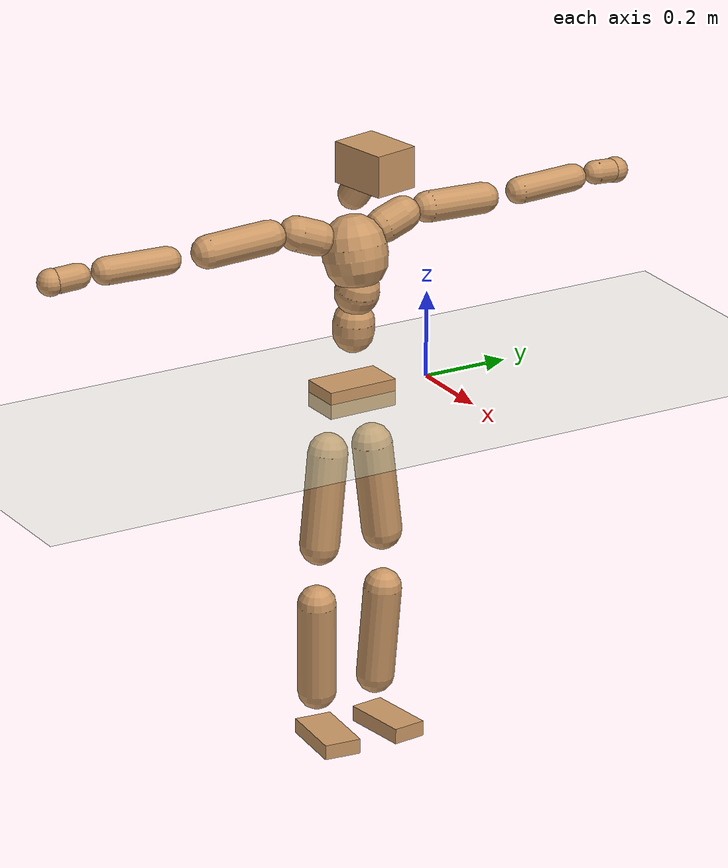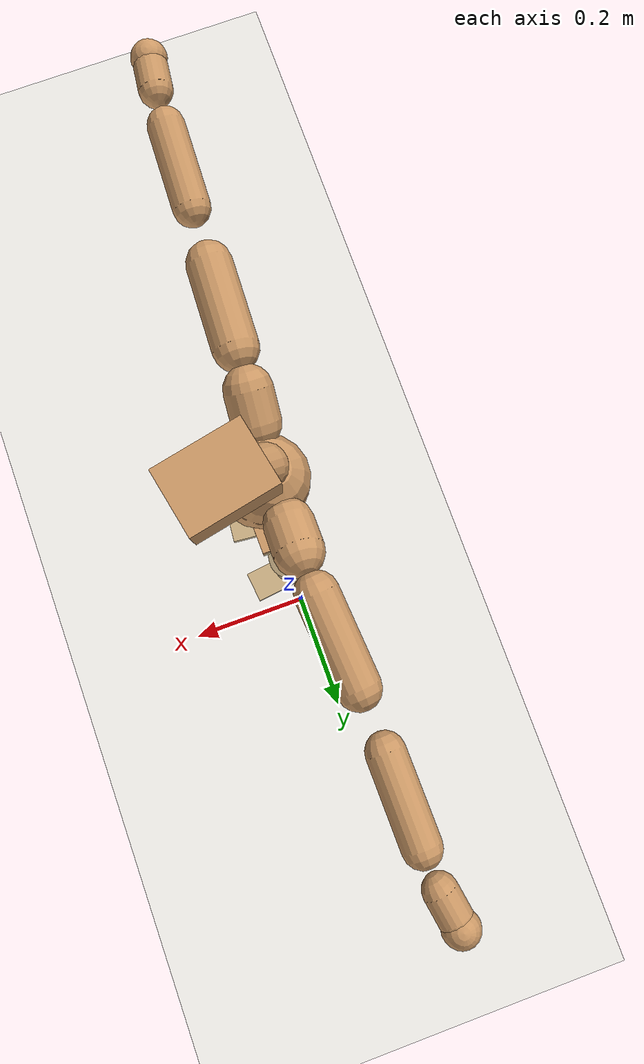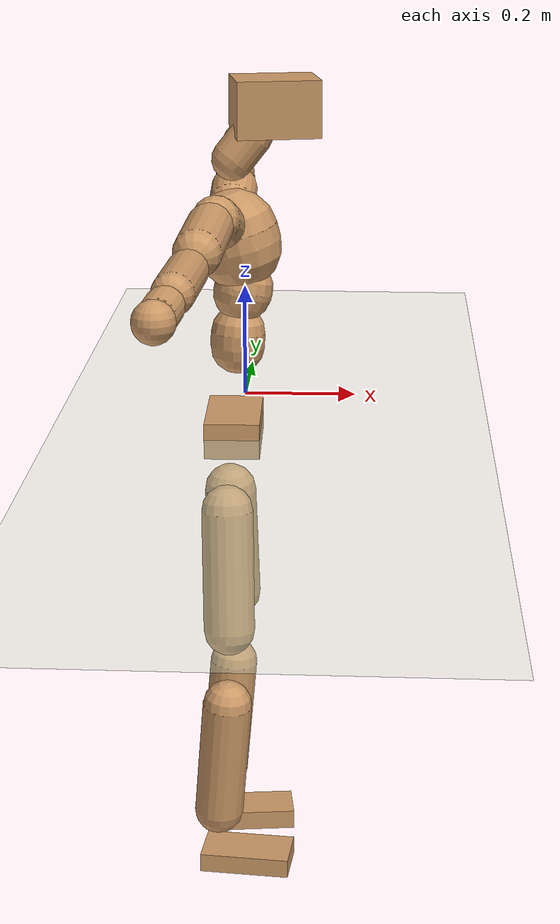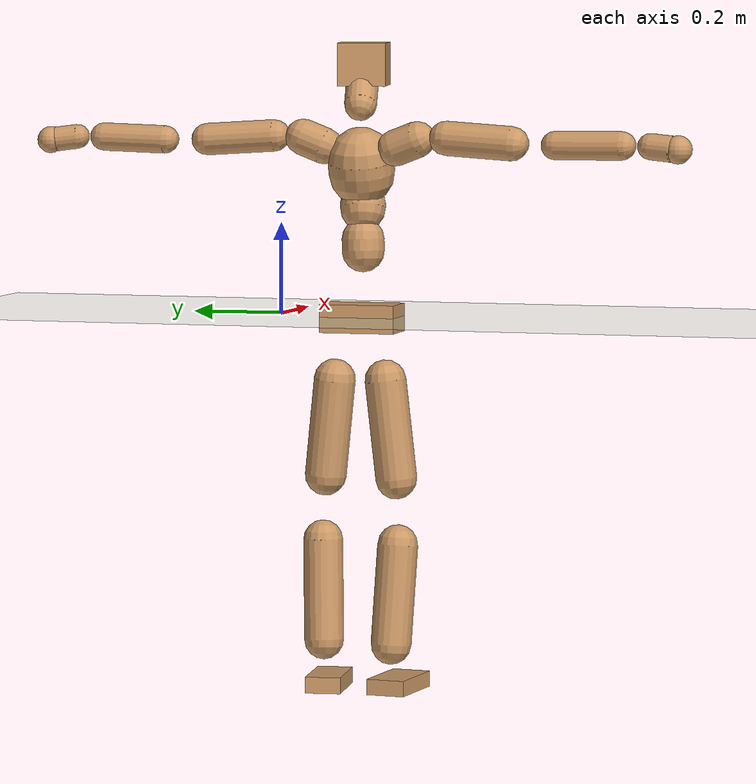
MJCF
<mujoco model="humanoid">
  <compiler coordinate="local" angle="radian"/>
  <default>
    <joint damping="0.0" armature="0.01" stiffness="0.0" limited="true"/>
    <geom conaffinity="1" condim="3" contype="7" margin="0.001" rgba="0.8 0.6 .4 1"/>
  </default>
  <asset>
    <texture type="skybox" builtin="gradient" rgb1=".4 .5 .6" rgb2="0 0 0" width="100" height="100"/>
    <texture builtin="flat" height="1278" mark="cross" markrgb="1 1 1" name="texgeom" random="0.01" rgb1="0.8 0.6 0.4" rgb2="0.8 0.6 0.4" type="cube" width="127"/>
    <texture builtin="checker" height="100" name="texplane" rgb1="0 0 0" rgb2="0.8 0.8 0.8" type="2d" width="100"/>
    <material name="MatPlane" reflectance="0.5" shininess="1" specular="1" texrepeat="60 60" texture="texplane"/>
    <material name="geom" texture="texgeom" texuniform="true"/>
  </asset>
  <worldbody>
    <light cutoff="100" diffuse="1 1 1" dir="-0 0 -1.3" directional="true" exponent="1" pos="0 0 1.3" specular=".1 .1 .1"/>
    <geom conaffinity="1" condim="3" name="floor" pos="0 0 0" rgba="0.8 0.9 0.8 1" size="100 100 .2" type="plane" material="MatPlane"/>
    <body name="Pelvis" pos="-0.0011 -0.1858 0.0056">
      <freejoint name="Pelvis"/>
      <geom type="box" contype="1" conaffinity="1" density="500" pos="-0.0064 -0.0001 -0.0106" size="0.0473 0.0833 0.0309" quat="0.9999 0.0000 0.0000 0.0113" name="Pelvis"/>
      <body name="L_Hip" pos="-0.0202 0.0505 -0.0759">
        <joint name="L_Hip_x" type="hinge" pos="0 0 0" axis="1 0 0" stiffness="800" damping="80" armature="0.02" range="-180.0000 180.0000"/>
        <joint name="L_Hip_y" type="hinge" pos="0 0 0" axis="0 1 0" stiffness="800" damping="80" armature="0.02" range="-180.0000 180.0000"/>
        <joint name="L_Hip_z" type="hinge" pos="0 0 0" axis="0 0 1" stiffness="800" damping="80" armature="0.02" range="-180.0000 180.0000"/>
        <geom type="capsule" contype="1" conaffinity="1" density="500" fromto="0.0020 0.0075 -0.0702 0.0079 0.0299 -0.2806" size="0.0455" name="L_Hip"/>
        <body name="L_Knee" pos="0.0098 0.0374 -0.3508">
          <joint name="L_Knee_x" type="hinge" pos="0 0 0" axis="1 0 0" stiffness="800" damping="80" armature="0.02" range="-180.0000 180.0000"/>
          <joint name="L_Knee_y" type="hinge" pos="0 0 0" axis="0 1 0" stiffness="800" damping="80" armature="0.02" range="-180.0000 180.0000"/>
          <joint name="L_Knee_z" type="hinge" pos="0 0 0" axis="0 0 1" stiffness="800" damping="80" armature="0.02" range="-180.0000 180.0000"/>
          <geom type="capsule" contype="1" conaffinity="1" density="500" fromto="-0.0062 -0.0026 -0.0727 -0.0246 -0.0105 -0.2908" size="0.0434" name="L_Knee"/>
          <body name="L_Ankle" pos="-0.0308 -0.0131 -0.3635">
            <joint name="L_Ankle_x" type="hinge" pos="0 0 0" axis="1 0 0" stiffness="800" damping="80" armature="0.02" range="-180.0000 180.0000"/>
            <joint name="L_Ankle_y" type="hinge" pos="0 0 0" axis="0 1 0" stiffness="800" damping="80" armature="0.02" range="-180.0000 180.0000"/>
            <joint name="L_Ankle_z" type="hinge" pos="0 0 0" axis="0 0 1" stiffness="800" damping="80" armature="0.02" range="-180.0000 180.0000"/>
            <geom type="box" contype="1" conaffinity="1" density="500" pos="0.0560 0.0068 -0.0254" size="0.0795 0.0388 0.0179" quat="0.9982 0.0000 0.0000 0.0607" name="L_Ankle"/>
            <body name="L_Toe" pos="0.1121 0.0137 -0.0508">
              <joint name="L_Toe_x" type="hinge" pos="0 0 0" axis="1 0 0" stiffness="500" damping="50" armature="0.02" range="-180.0000 180.0000"/>
              <joint name="L_Toe_y" type="hinge" pos="0 0 0" axis="0 1 0" stiffness="500" damping="50" armature="0.02" range="-180.0000 180.0000"/>
              <joint name="L_Toe_z" type="hinge" pos="0 0 0" axis="0 0 1" stiffness="500" damping="50" armature="0.02" range="-180.0000 180.0000"/>
              <geom type="box" contype="1" conaffinity="1" density="500" pos="0.0000 0.0000 0.0269" size="0.0008 0.002 0.001" quat="0.9977 0.0000 0.0000 0.0683" name="L_Toe"/>
            </body>
          </body>
        </body>
      </body>
      <body name="R_Hip" pos="-0.0165 -0.0487 -0.0732">
        <joint name="R_Hip_x" type="hinge" pos="0 0 0" axis="1 0 0" stiffness="800" damping="80" armature="0.02" range="-180.0000 180.0000"/>
        <joint name="R_Hip_y" type="hinge" pos="0 0 0" axis="0 1 0" stiffness="800" damping="80" armature="0.02" range="-180.0000 180.0000"/>
        <joint name="R_Hip_z" type="hinge" pos="0 0 0" axis="0 0 1" stiffness="800" damping="80" armature="0.02" range="-180.0000 180.0000"/>
        <geom type="capsule" contype="1" conaffinity="1" density="500" fromto="0.0013 -0.0079 -0.0718 0.0051 -0.0315 -0.2873" size="0.045" name="R_Hip"/>
        <body name="R_Knee" pos="0.0064 -0.0394 -0.3592">
          <joint name="R_Knee_x" type="hinge" pos="0 0 0" axis="1 0 0" stiffness="800" damping="80" armature="0.02" range="-180.0000 180.0000"/>
          <joint name="R_Knee_y" type="hinge" pos="0 0 0" axis="0 1 0" stiffness="800" damping="80" armature="0.02" range="-180.0000 180.0000"/>
          <joint name="R_Knee_z" type="hinge" pos="0 0 0" axis="0 0 1" stiffness="800" damping="80" armature="0.02" range="-180.0000 180.0000"/>
          <geom type="capsule" contype="1" conaffinity="1" density="500" fromto="-0.0058 0.0033 -0.0725 -0.0231 0.0133 -0.2899" size="0.0442" name="R_Knee"/>
          <body name="R_Ankle" pos="-0.0288 0.0166 -0.3623">
            <joint name="R_Ankle_x" type="hinge" pos="0 0 0" axis="1 0 0" stiffness="800" damping="80" armature="0.02" range="-180.0000 180.0000"/>
            <joint name="R_Ankle_y" type="hinge" pos="0 0 0" axis="0 1 0" stiffness="800" damping="80" armature="0.02" range="-180.0000 180.0000"/>
            <joint name="R_Ankle_z" type="hinge" pos="0 0 0" axis="0 0 1" stiffness="800" damping="80" armature="0.02" range="-180.0000 180.0000"/>
            <geom type="box" contype="1" conaffinity="1" density="500" pos="0.0571 -0.0051 -0.0204" size="0.0805 0.0428 0.0172" quat="0.9990 0.0000 0.0000 -0.0447" name="R_Ankle"/>
            <body name="R_Toe" pos="0.1143 -0.0103 -0.0408">
              <joint name="R_Toe_x" type="hinge" pos="0 0 0" axis="1 0 0" stiffness="500" damping="50" armature="0.02" range="-180.0000 180.0000"/>
              <joint name="R_Toe_y" type="hinge" pos="0 0 0" axis="0 1 0" stiffness="500" damping="50" armature="0.02" range="-180.0000 180.0000"/>
              <joint name="R_Toe_z" type="hinge" pos="0 0 0" axis="0 0 1" stiffness="500" damping="50" armature="0.02" range="-180.0000 180.0000"/>
              <geom type="box" contype="1" conaffinity="1" density="500" pos="0.0000 0.0000 0.0228" size="0.0008 0.0021 0.001" quat="0.9994 0.0000 0.0000 -0.0354" name="R_Toe"/>
            </body>
          </body>
        </body>
      </body>
      <body name="Torso" pos="-0.0018 -0.0027 0.0854">
        <joint name="Torso_x" type="hinge" pos="0 0 0" axis="1 0 0" stiffness="1000" damping="100" armature="0.02" range="-180.0000 180.0000"/>
        <joint name="Torso_y" type="hinge" pos="0 0 0" axis="0 1 0" stiffness="1000" damping="100" armature="0.02" range="-180.0000 180.0000"/>
        <joint name="Torso_z" type="hinge" pos="0 0 0" axis="0 0 1" stiffness="1000" damping="100" armature="0.02" range="-180.0000 180.0000"/>
        <geom type="capsule" contype="1" conaffinity="1" density="500" fromto="0.0038 0.0022 0.0749 0.0025 0.0014 0.0500" size="0.0465" name="Torso"/>
        <body name="Spine" pos="0.0063 0.0036 0.1249">
          <joint name="Spine_x" type="hinge" pos="0 0 0" axis="1 0 0" stiffness="1000" damping="100" armature="0.02" range="-180.0000 180.0000"/>
          <joint name="Spine_y" type="hinge" pos="0 0 0" axis="0 1 0" stiffness="1000" damping="100" armature="0.02" range="-180.0000 180.0000"/>
          <joint name="Spine_z" type="hinge" pos="0 0 0" axis="0 0 1" stiffness="1000" damping="100" armature="0.02" range="-180.0000 180.0000"/>
          <geom type="capsule" contype="1" conaffinity="1" density="500" fromto="0.0075 0.0018 0.0270 0.0050 0.0012 0.0180" size="0.05" name="Spine"/>
          <body name="Chest" pos="0.0126 0.0029 0.0449">
            <joint name="Chest_x" type="hinge" pos="0 0 0" axis="1 0 0" stiffness="1000" damping="100" armature="0.02" range="-180.0000 180.0000"/>
            <joint name="Chest_y" type="hinge" pos="0 0 0" axis="0 1 0" stiffness="1000" damping="100" armature="0.02" range="-180.0000 180.0000"/>
            <joint name="Chest_z" type="hinge" pos="0 0 0" axis="0 0 1" stiffness="1000" damping="100" armature="0.02" range="-180.0000 180.0000"/>
            <geom type="capsule" contype="1" conaffinity="1" density="500" fromto="-0.0198 -0.0011 0.0774 -0.0132 -0.0007 0.0516" size="0.0726" name="Chest"/>
            <body name="Neck" pos="-0.0334 -0.0025 0.1856">
              <joint name="Neck_x" type="hinge" pos="0 0 0" axis="1 0 0" stiffness="500" damping="50" armature="0.02" range="-180.0000 180.0000"/>
              <joint name="Neck_y" type="hinge" pos="0 0 0" axis="0 1 0" stiffness="500" damping="50" armature="0.02" range="-180.0000 180.0000"/>
              <joint name="Neck_z" type="hinge" pos="0 0 0" axis="0 0 1" stiffness="500" damping="50" armature="0.02" range="-180.0000 180.0000"/>
              <geom type="capsule" contype="1" conaffinity="1" density="500" fromto="0.0105 0.0018 0.0131 0.0420 0.0074 0.0524" size="0.0353" name="Neck"/>
              <body name="Head" pos="0.0525 0.0092 0.0655">
                <joint name="Head_x" type="hinge" pos="0 0 0" axis="1 0 0" stiffness="500" damping="50" armature="0.02" range="-180.0000 180.0000"/>
                <joint name="Head_y" type="hinge" pos="0 0 0" axis="0 1 0" stiffness="500" damping="50" armature="0.02" range="-180.0000 180.0000"/>
                <joint name="Head_z" type="hinge" pos="0 0 0" axis="0 0 1" stiffness="500" damping="50" armature="0.02" range="-180.0000 180.0000"/>
                <geom type="box" contype="1" conaffinity="1" density="500" pos="0.0272 0.0056 0.0337" size="0.0696 0.0527 0.0469" quat="0.9948 0.0000 0.0000 0.1016" name="Head"/>
              </body>
            </body>
            <body name="L_Thorax" pos="-0.0306 0.0629 0.1024">
              <joint name="L_Thorax_x" type="hinge" pos="0 0 0" axis="1 0 0" stiffness="500" damping="50" armature="0.02" range="-180.0000 180.0000"/>
              <joint name="L_Thorax_y" type="hinge" pos="0 0 0" axis="0 1 0" stiffness="500" damping="50" armature="0.02" range="-180.0000 180.0000"/>
              <joint name="L_Thorax_z" type="hinge" pos="0 0 0" axis="0 0 1" stiffness="500" damping="50" armature="0.02" range="-180.0000 180.0000"/>
              <geom type="capsule" contype="1" conaffinity="1" density="500" fromto="0.0002 0.0159 0.0061 0.0008 0.0637 0.0245" size="0.0399" name="L_Thorax"/>
              <body name="L_Shoulder" pos="0.001 0.0796 0.0306">
                <joint name="L_Shoulder_x" type="hinge" pos="0 0 0" axis="1 0 0" stiffness="500" damping="50" armature="0.02" range="-720.0000 720.0000"/>
                <joint name="L_Shoulder_y" type="hinge" pos="0 0 0" axis="0 1 0" stiffness="500" damping="50" armature="0.02" range="-720.0000 720.0000"/>
                <joint name="L_Shoulder_z" type="hinge" pos="0 0 0" axis="0 0 1" stiffness="500" damping="50" armature="0.02" range="-720.0000 720.0000"/>
                <geom type="capsule" contype="1" conaffinity="1" density="500" fromto="-0.0039 0.0499 -0.0031 -0.0154 0.1995 -0.0125" size="0.035" name="L_Shoulder"/>
                <body name="L_Elbow" pos="-0.0193 0.2494 -0.0156">
                  <joint name="L_Elbow_x" type="hinge" pos="0 0 0" axis="1 0 0" stiffness="500" damping="50" armature="0.02" range="-720.0000 720.0000"/>
                  <joint name="L_Elbow_y" type="hinge" pos="0 0 0" axis="0 1 0" stiffness="500" damping="50" armature="0.02" range="-720.0000 720.0000"/>
                  <joint name="L_Elbow_z" type="hinge" pos="0 0 0" axis="0 0 1" stiffness="500" damping="50" armature="0.02" range="-720.0000 720.0000"/>
                  <geom type="capsule" contype="1" conaffinity="1" density="500" fromto="-0.0008 0.0468 0.0015 -0.0031 0.1873 0.0061" size="0.0306" name="L_Elbow"/>
                  <body name="L_Wrist" pos="-0.0039 0.2341 0.0076">
                    <joint name="L_Wrist_x" type="hinge" pos="0 0 0" axis="1 0 0" stiffness="300" damping="30" armature="0.02" range="-180.0000 180.0000"/>
                    <joint name="L_Wrist_y" type="hinge" pos="0 0 0" axis="0 1 0" stiffness="300" damping="30" armature="0.02" range="-180.0000 180.0000"/>
                    <joint name="L_Wrist_z" type="hinge" pos="0 0 0" axis="0 0 1" stiffness="300" damping="30" armature="0.02" range="-180.0000 180.0000"/>
                    <geom type="capsule" contype="1" conaffinity="1" density="500" fromto="-0.0025 0.0147 -0.0018 -0.0100 0.0588 -0.0073" size="0.0269" name="L_Wrist"/>
                    <body name="L_Hand" pos="-0.0126 0.0735 -0.0091">
                      <joint name="L_Hand_x" type="hinge" pos="0 0 0" axis="1 0 0" stiffness="300" damping="30" armature="0.02" range="-180.0000 180.0000"/>
                      <joint name="L_Hand_y" type="hinge" pos="0 0 0" axis="0 1 0" stiffness="300" damping="30" armature="0.02" range="-180.0000 180.0000"/>
                      <joint name="L_Hand_z" type="hinge" pos="0 0 0" axis="0 0 1" stiffness="300" damping="30" armature="0.02" range="-180.0000 180.0000"/>
                      <geom type="sphere" contype="1" conaffinity="1" density="500" size="0.0294" pos="0.0000 0.0000 0.0000" name="L_Hand"/>
                    </body>
                  </body>
                </body>
              </body>
            </body>
            <body name="R_Thorax" pos="-0.0349 -0.066 0.099">
              <joint name="R_Thorax_x" type="hinge" pos="0 0 0" axis="1 0 0" stiffness="500" damping="50" armature="0.02" range="-180.0000 180.0000"/>
              <joint name="R_Thorax_y" type="hinge" pos="0 0 0" axis="0 1 0" stiffness="500" damping="50" armature="0.02" range="-180.0000 180.0000"/>
              <joint name="R_Thorax_z" type="hinge" pos="0 0 0" axis="0 0 1" stiffness="500" damping="50" armature="0.02" range="-180.0000 180.0000"/>
              <geom type="capsule" contype="1" conaffinity="1" density="500" fromto="-0.0014 -0.0170 0.0065 -0.0057 -0.0680 0.0261" size="0.0396" name="R_Thorax"/>
              <body name="R_Shoulder" pos="-0.0071 -0.085 0.0326">
                <joint name="R_Shoulder_x" type="hinge" pos="0 0 0" axis="1 0 0" stiffness="500" damping="50" armature="0.02" range="-720.0000 720.0000"/>
                <joint name="R_Shoulder_y" type="hinge" pos="0 0 0" axis="0 1 0" stiffness="500" damping="50" armature="0.02" range="-720.0000 720.0000"/>
                <joint name="R_Shoulder_z" type="hinge" pos="0 0 0" axis="0 0 1" stiffness="500" damping="50" armature="0.02" range="-720.0000 720.0000"/>
                <geom type="capsule" contype="1" conaffinity="1" density="500" fromto="-0.0021 -0.0491 -0.0031 -0.0086 -0.1963 -0.0126" size="0.0376" name="R_Shoulder"/>
                <body name="R_Elbow" pos="-0.0107 -0.2454 -0.0157">
                  <joint name="R_Elbow_x" type="hinge" pos="0 0 0" axis="1 0 0" stiffness="500" damping="50" armature="0.02" range="-720.0000 720.0000"/>
                  <joint name="R_Elbow_y" type="hinge" pos="0 0 0" axis="0 1 0" stiffness="500" damping="50" armature="0.02" range="-720.0000 720.0000"/>
                  <joint name="R_Elbow_z" type="hinge" pos="0 0 0" axis="0 0 1" stiffness="500" damping="50" armature="0.02" range="-720.0000 720.0000"/>
                  <geom type="capsule" contype="1" conaffinity="1" density="500" fromto="-0.0021 -0.0490 0.0005 -0.0083 -0.1960 0.0020" size="0.0311" name="R_Elbow"/>
                  <body name="R_Wrist" pos="-0.0104 -0.245 0.0026">
                    <joint name="R_Wrist_x" type="hinge" pos="0 0 0" axis="1 0 0" stiffness="300" damping="30" armature="0.02" range="-180.0000 180.0000"/>
                    <joint name="R_Wrist_y" type="hinge" pos="0 0 0" axis="0 1 0" stiffness="300" damping="30" armature="0.02" range="-180.0000 180.0000"/>
                    <joint name="R_Wrist_z" type="hinge" pos="0 0 0" axis="0 0 1" stiffness="300" damping="30" armature="0.02" range="-180.0000 180.0000"/>
                    <geom type="capsule" contype="1" conaffinity="1" density="500" fromto="-0.0019 -0.0154 -0.0014 -0.0077 -0.0615 -0.0057" size="0.0285" name="R_Wrist"/>
                    <body name="R_Hand" pos="-0.0097 -0.0768 -0.0071">
                      <joint name="R_Hand_x" type="hinge" pos="0 0 0" axis="1 0 0" stiffness="300" damping="30" armature="0.02" range="-180.0000 180.0000"/>
                      <joint name="R_Hand_y" type="hinge" pos="0 0 0" axis="0 1 0" stiffness="300" damping="30" armature="0.02" range="-180.0000 180.0000"/>
                      <joint name="R_Hand_z" type="hinge" pos="0 0 0" axis="0 0 1" stiffness="300" damping="30" armature="0.02" range="-180.0000 180.0000"/>
                      <geom type="sphere" contype="1" conaffinity="1" density="500" size="0.0305" pos="0.0000 0.0000 0.0000" name="R_Hand"/>
                    </body>
                  </body>
                </body>
              </body>
            </body>
          </body>
        </body>
      </body>
    </body>
  </worldbody>
  <actuator>
    <motor name="L_Hip_x" joint="L_Hip_x" gear="500"/>
    <motor name="L_Hip_y" joint="L_Hip_y" gear="500"/>
    <motor name="L_Hip_z" joint="L_Hip_z" gear="500"/>
    <motor name="L_Knee_x" joint="L_Knee_x" gear="500"/>
    <motor name="L_Knee_y" joint="L_Knee_y" gear="500"/>
    <motor name="L_Knee_z" joint="L_Knee_z" gear="500"/>
    <motor name="L_Ankle_x" joint="L_Ankle_x" gear="500"/>
    <motor name="L_Ankle_y" joint="L_Ankle_y" gear="500"/>
    <motor name="L_Ankle_z" joint="L_Ankle_z" gear="500"/>
    <motor name="L_Toe_x" joint="L_Toe_x" gear="500"/>
    <motor name="L_Toe_y" joint="L_Toe_y" gear="500"/>
    <motor name="L_Toe_z" joint="L_Toe_z" gear="500"/>
    <motor name="R_Hip_x" joint="R_Hip_x" gear="500"/>
    <motor name="R_Hip_y" joint="R_Hip_y" gear="500"/>
    <motor name="R_Hip_z" joint="R_Hip_z" gear="500"/>
    <motor name="R_Knee_x" joint="R_Knee_x" gear="500"/>
    <motor name="R_Knee_y" joint="R_Knee_y" gear="500"/>
    <motor name="R_Knee_z" joint="R_Knee_z" gear="500"/>
    <motor name="R_Ankle_x" joint="R_Ankle_x" gear="500"/>
    <motor name="R_Ankle_y" joint="R_Ankle_y" gear="500"/>
    <motor name="R_Ankle_z" joint="R_Ankle_z" gear="500"/>
    <motor name="R_Toe_x" joint="R_Toe_x" gear="500"/>
    <motor name="R_Toe_y" joint="R_Toe_y" gear="500"/>
    <motor name="R_Toe_z" joint="R_Toe_z" gear="500"/>
    <motor name="Torso_x" joint="Torso_x" gear="500"/>
    <motor name="Torso_y" joint="Torso_y" gear="500"/>
    <motor name="Torso_z" joint="Torso_z" gear="500"/>
    <motor name="Spine_x" joint="Spine_x" gear="500"/>
    <motor name="Spine_y" joint="Spine_y" gear="500"/>
    <motor name="Spine_z" joint="Spine_z" gear="500"/>
    <motor name="Chest_x" joint="Chest_x" gear="500"/>
    <motor name="Chest_y" joint="Chest_y" gear="500"/>
    <motor name="Chest_z" joint="Chest_z" gear="500"/>
    <motor name="Neck_x" joint="Neck_x" gear="500"/>
    <motor name="Neck_y" joint="Neck_y" gear="500"/>
    <motor name="Neck_z" joint="Neck_z" gear="500"/>
    <motor name="Head_x" joint="Head_x" gear="500"/>
    <motor name="Head_y" joint="Head_y" gear="500"/>
    <motor name="Head_z" joint="Head_z" gear="500"/>
    <motor name="L_Thorax_x" joint="L_Thorax_x" gear="500"/>
    <motor name="L_Thorax_y" joint="L_Thorax_y" gear="500"/>
    <motor name="L_Thorax_z" joint="L_Thorax_z" gear="500"/>
    <motor name="L_Shoulder_x" joint="L_Shoulder_x" gear="500"/>
    <motor name="L_Shoulder_y" joint="L_Shoulder_y" gear="500"/>
    <motor name="L_Shoulder_z" joint="L_Shoulder_z" gear="500"/>
    <motor name="L_Elbow_x" joint="L_Elbow_x" gear="500"/>
    <motor name="L_Elbow_y" joint="L_Elbow_y" gear="500"/>
    <motor name="L_Elbow_z" joint="L_Elbow_z" gear="500"/>
    <motor name="L_Wrist_x" joint="L_Wrist_x" gear="500"/>
    <motor name="L_Wrist_y" joint="L_Wrist_y" gear="500"/>
    <motor name="L_Wrist_z" joint="L_Wrist_z" gear="500"/>
    <motor name="L_Hand_x" joint="L_Hand_x" gear="500"/>
    <motor name="L_Hand_y" joint="L_Hand_y" gear="500"/>
    <motor name="L_Hand_z" joint="L_Hand_z" gear="500"/>
    <motor name="R_Thorax_x" joint="R_Thorax_x" gear="500"/>
    <motor name="R_Thorax_y" joint="R_Thorax_y" gear="500"/>
    <motor name="R_Thorax_z" joint="R_Thorax_z" gear="500"/>
    <motor name="R_Shoulder_x" joint="R_Shoulder_x" gear="500"/>
    <motor name="R_Shoulder_y" joint="R_Shoulder_y" gear="500"/>
    <motor name="R_Shoulder_z" joint="R_Shoulder_z" gear="500"/>
    <motor name="R_Elbow_x" joint="R_Elbow_x" gear="500"/>
    <motor name="R_Elbow_y" joint="R_Elbow_y" gear="500"/>
    <motor name="R_Elbow_z" joint="R_Elbow_z" gear="500"/>
    <motor name="R_Wrist_x" joint="R_Wrist_x" gear="500"/>
    <motor name="R_Wrist_y" joint="R_Wrist_y" gear="500"/>
    <motor name="R_Wrist_z" joint="R_Wrist_z" gear="500"/>
    <motor name="R_Hand_x" joint="R_Hand_x" gear="500"/>
    <motor name="R_Hand_y" joint="R_Hand_y" gear="500"/>
    <motor name="R_Hand_z" joint="R_Hand_z" gear="500"/>
  </actuator>
  <contact>
    <exclude body1="Torso" body2="Chest"/>
    <exclude body1="Head" body2="Chest"/>
    <exclude body1="R_Knee" body2="R_Toe"/>
    <exclude body1="R_Knee" body2="L_Ankle"/>
    <exclude body1="R_Knee" body2="L_Toe"/>
    <exclude body1="L_Knee" body2="L_Toe"/>
    <exclude body1="L_Knee" body2="R_Ankle"/>
    <exclude body1="L_Knee" body2="R_Toe"/>
    <exclude body1="L_Shoulder" body2="Chest"/>
    <exclude body1="R_Shoulder" body2="Chest"/>
  </contact>
  <sensor/>
  <size njmax="700" nconmax="700"/>
</mujoco>
